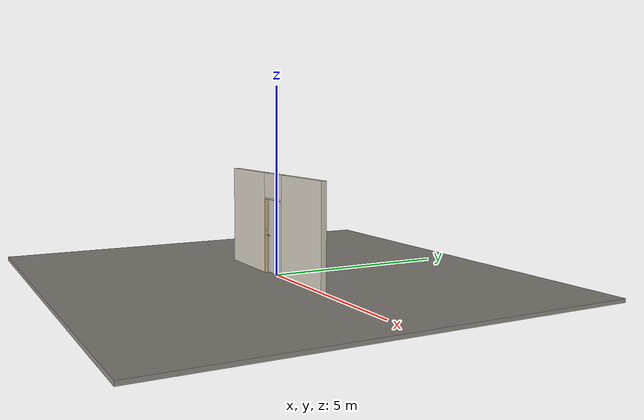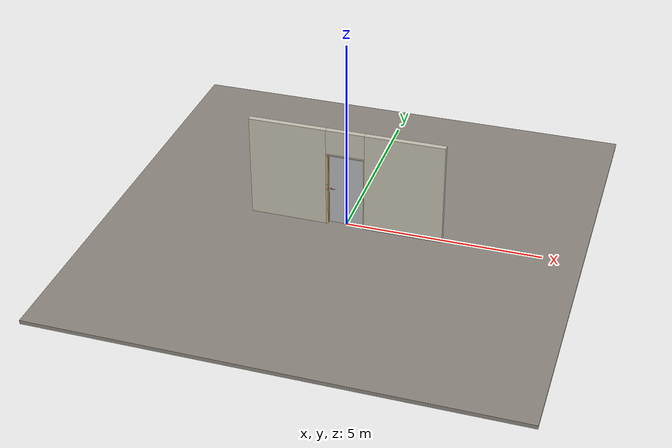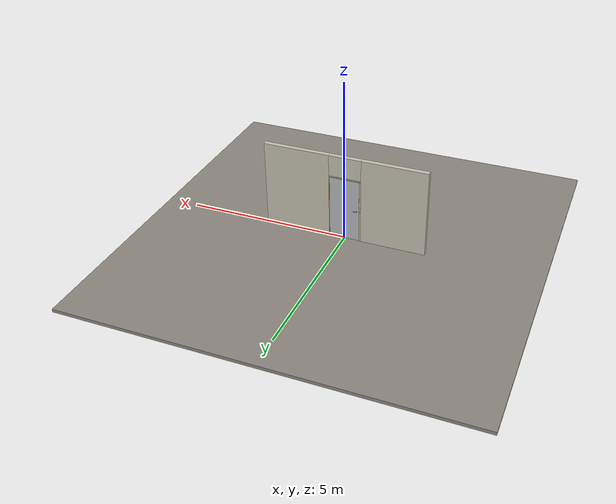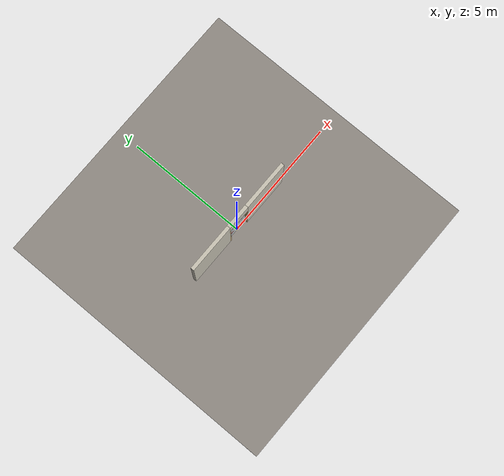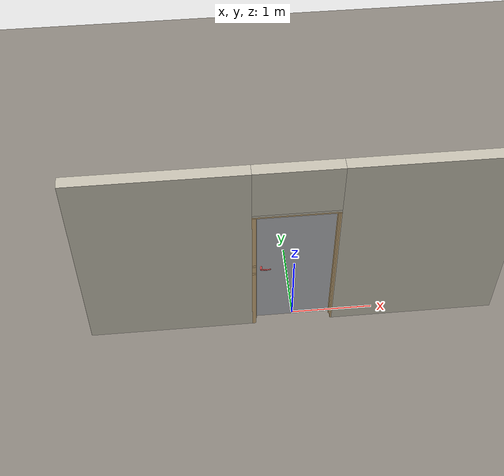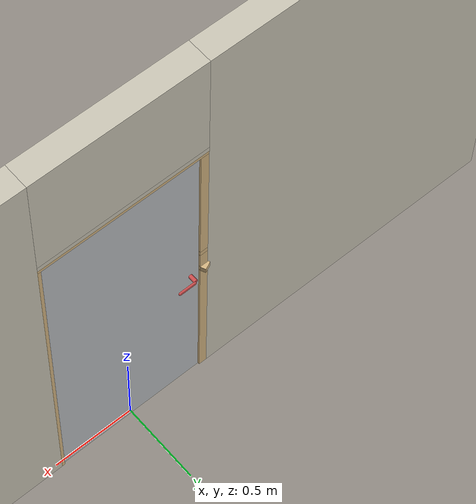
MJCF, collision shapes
<?xml version="1.0" ?>
<mujoco model="db0949_swing_single_minimal">
  <compiler angle="radian" meshdir="../../hardware" texturedir="../../textures" autolimits="true" inertiafromgeom="false"/>
  <option timestep="0.002" integrator="implicitfast" cone="elliptic" impratio="10" noslip_iterations="3">
    <flag multiccd="enable"/>
  </option>
  <size memory="16M"/>
  <default>
    <geom condim="4" solref="0.005 1" solimp="0.95 0.99 0.001"/>
    <joint solreflimit="0.005 1" solimplimit="0.95 0.99 0.001"/>
    <tendon solreflimit="0.005 1"/>
    <equality solref="0.002 1"/>
  </default>
  <visual>
    <headlight ambient="0.4 0.4 0.4" diffuse="0.7 0.7 0.7" specular="0.2 0.2 0.2"/>
    <quality shadowsize="4096"/>
    <map znear="0.01" zfar="60"/>
  </visual>
  <asset>
    <mesh name="lever_748f08efca" file="lever_748f08efca.obj"/>
    <material name="mat_floor" rgba="0.55 0.53 0.5 1" specular="0.2" shininess="0.15" reflectance="0"/>
    <material name="mat_wall" rgba="0.78 0.76 0.7 1" specular="0.2" shininess="0.1" reflectance="0"/>
    <material name="mat_leaf" rgba="0.72 0.73 0.74 1" specular="0.2" shininess="0.49" reflectance="0"/>
    <material name="mat_leaf_panel" rgba="0.662 0.672 0.681 1" specular="0.2" shininess="0.49" reflectance="0"/>
    <material name="mat_hinge" rgba="0.65 0.66 0.68 1" specular="0.74" shininess="0.5" reflectance="0.36"/>
    <material name="mat_op_chrome" rgba="0.9 0.9 0.92 1" specular="0.8" shininess="0.9" reflectance="0.4"/>
    <material name="mat_trim" rgba="0.85 0.66 0.3 1" specular="0.8" shininess="0.75" reflectance="0.4"/>
    <material name="mat_bolt" rgba="0.85 0.66 0.3 1" specular="0.8" shininess="0.75" reflectance="0.4"/>
    <material name="mat_deadbolt" rgba="0.85 0.66 0.3 1" specular="0.8" shininess="0.75" reflectance="0.4"/>
    <material name="mat_frame" rgba="0.82 0.7 0.5 1" specular="0.2" shininess="0.45" reflectance="0"/>
    <material name="mat_bumper_stop" rgba="0.08 0.08 0.08 1" specular="0.2" shininess="0.1" reflectance="0"/>
    <material name="mat_stop_base" rgba="0.9 0.9 0.92 1" specular="0.8" shininess="0.9" reflectance="0.4"/>
    <texture name="skybox" type="skybox" builtin="gradient" rgb1="0.6 0.7 0.85" rgb2="0.9 0.92 0.95" width="256" height="256"/>
  </asset>
  <worldbody>
    <light name="sun" pos="1.5 -2.5 4" dir="-0.3 0.5 -0.8" directional="true" diffuse="0.8 0.8 0.8" specular="0.3 0.3 0.3" castshadow="true"/>
    <light name="fill" pos="-1.5 2.5 3" dir="0.3 -0.5 -0.7" directional="true" diffuse="0.35 0.35 0.4" castshadow="false"/>
    <camera name="robot_view" pos="0 -2.546125 1.698475" xyaxes="1 0 0 0 0.26963 0.962964" fovy="52"/>
    <camera name="far_view" pos="0 2.450125 1.698475" xyaxes="-1 0 0 0 -0.26963 0.962964" fovy="52"/>
    <camera name="iso" pos="-1.898575 -2.146425 2.098175" xyaxes="0.741536 -0.670913 0 0.242917 0.268487 0.932151" fovy="46"/>
    <camera name="detail_handle" pos="-0.1269 -0.8725 1.296" xyaxes="0.97561 0.219512 0 -0.070934 0.315262 0.94635" fovy="38"/>
    <geom name="floor" type="box" size="6 6 0.05" pos="0 0 -0.05" material="mat_floor" group="0" contype="1" conaffinity="1" friction="0.8 0.005 0.0001" density="2400"/>
    <geom name="wall_left" type="box" size="0.99525 0.0725 1.35" pos="-1.50475 -0.048 1.35" material="mat_wall" group="0" contype="1" conaffinity="1" friction="0.6 0.005 0.0001" density="800"/>
    <geom name="wall_right" type="box" size="1.01025 0.0725 1.35" pos="1.48975 -0.048 1.35" material="mat_wall" group="0" contype="1" conaffinity="1" friction="0.6 0.005 0.0001" density="800"/>
    <geom name="wall_header" type="box" size="0.4945 0.0725 0.3265" pos="-0.015 -0.048 2.3735" material="mat_wall" group="0" contype="1" conaffinity="1" friction="0.6 0.005 0.0001" density="800"/>
    <geom name="jamb_hinge" type="box" size="0.0095 0.0725 0.999" pos="0.47 -0.048 0.999" material="mat_frame" group="0" contype="1" conaffinity="1" friction="0.6 0.005 0.0001" density="400"/>
    <geom name="strike_1016_wall_n" type="box" size="0.0245 0.056325 0.0167" pos="-0.485 -0.064175 1.016" material="mat_frame" group="0" contype="1" conaffinity="1" friction="0.6 0.005 0.0001" density="400"/>
    <geom name="strike_1016_wall_p" type="box" size="0.0245 0.008 0.0167" pos="-0.485 0.01585 1.016" material="mat_frame" group="0" contype="1" conaffinity="1" friction="0.6 0.005 0.0001" density="400"/>
    <geom name="strike_1016_ramp" type="box" size="0.0245 0.01649 0.0167" pos="-0.489636 0.028673 1.016" quat="0.977148 0 0 0.212558" material="mat_frame" group="0" contype="1" conaffinity="1" friction="0.12 0.005 0.0001" density="400"/>
    <geom name="strike_1016_back" type="box" size="0.01615 0.00785 0.0167" pos="-0.49335 0 1.016" material="mat_frame" group="0" contype="1" conaffinity="1" friction="0.6 0.005 0.0001" density="400"/>
    <geom name="strike_1156_wall_n" type="box" size="0.0245 0.0555 0.0155" pos="-0.485 -0.065 1.156" material="mat_frame" group="0" contype="1" conaffinity="1" friction="0.6 0.005 0.0001" density="400"/>
    <geom name="strike_1156_wall_p" type="box" size="0.0245 0.0075 0.0155" pos="-0.485 0.017 1.156" material="mat_frame" group="0" contype="1" conaffinity="1" friction="0.6 0.005 0.0001" density="400"/>
    <geom name="strike_1156_back" type="box" size="0.0098 0.0095 0.0155" pos="-0.4997 0 1.156" material="mat_frame" group="0" contype="1" conaffinity="1" friction="0.6 0.005 0.0001" density="400"/>
    <geom name="jamb_strike_0" type="box" size="0.0245 0.0725 0.49965" pos="-0.485 -0.048 0.49965" material="mat_frame" group="0" contype="1" conaffinity="1" friction="0.6 0.005 0.0001" density="400"/>
    <geom name="jamb_strike_1" type="box" size="0.0245 0.0725 0.0539" pos="-0.485 -0.048 1.0866" material="mat_frame" group="0" contype="1" conaffinity="1" friction="0.6 0.005 0.0001" density="400"/>
    <geom name="jamb_strike_2" type="box" size="0.0245 0.0725 0.41325" pos="-0.485 -0.048 1.58475" material="mat_frame" group="0" contype="1" conaffinity="1" friction="0.6 0.005 0.0001" density="400"/>
    <geom name="jamb_head" type="box" size="0.4945 0.0725 0.0095" pos="-0.015 -0.048 2.0075" material="mat_frame" group="0" contype="1" conaffinity="1" friction="0.6 0.005 0.0001" density="400"/>
    <geom name="head_stud" type="box" size="0.4945 0.0725 0.015" pos="-0.015 -0.048 2.032" material="mat_wall" group="0" contype="1" conaffinity="1" friction="0.6 0.005 0.0001" density="500"/>
    <geom name="stop_hinge" type="box" size="0.0055 0.016 0.999" pos="0.455 -0.034 0.999" material="mat_frame" group="0" contype="1" conaffinity="1" friction="0.6 0.005 0.0001" density="400"/>
    <geom name="stop_strike" type="box" size="0.0055 0.016 0.999" pos="-0.455 -0.034 0.999" material="mat_frame" group="0" contype="1" conaffinity="1" friction="0.6 0.005 0.0001" density="400"/>
    <geom name="stop_head" type="box" size="0.4605 0.016 0.0055" pos="0 -0.034 1.9925" material="mat_frame" group="0" contype="1" conaffinity="1" friction="0.6 0.005 0.0001" density="400"/>
    <site name="approach_point" pos="0 -1.5 0" quat="1 0 0 0" size="0.05" rgba="0.2 0.9 0.2 0.5" group="4"/>
    <site name="goal_point" pos="0 1.5 0" quat="1 0 0 0" size="0.05" rgba="0.2 0.9 0.2 0.5" group="4"/>
    <site name="door_plane_center" pos="0 0 0.999" quat="1 0 0 0" size="0.02" rgba="0.2 0.9 0.2 0.5" group="4"/>
    <body name="leaf" pos="0.4605 0 0">
      <inertial pos="-0.46 0 1.0015" mass="13.607802" quat="-0.5 0.5 0.5 0.5" diaginertia="0.948714435 4.469539384 5.415475559"/>
      <joint name="leaf_hinge" type="hinge" axis="0 0 -1" pos="-0.003 0.0245 0" limited="true" range="0 1.570796" damping="0.300186" frictionloss="1.262881" armature="0.02"/>
      <geom name="leaf_slab" type="box" size="0.457 0.0175 0.9925" pos="-0.46 0 1.0015" material="mat_leaf" group="0" contype="1" conaffinity="1" friction="0.35 0.005 0.0001" density="1"/>
      <site name="leaf_edge_mid" pos="-0.917 0 0.9925" quat="1 0 0 0" size="0.02" rgba="0.2 0.9 0.2 0.5" group="4"/>
      <body name="leaf_handle" pos="-0.857 0 1.016">
        <inertial pos="0.025809 0 0" mass="0.794529" quat="0.707107 0 0 -0.707107" diaginertia="0.001153119 0.002805212 0.00382246"/>
        <joint name="leaf_handle_hinge" type="hinge" axis="0 1 0" limited="true" range="0 0.87" damping="0.205084" frictionloss="0.04" stiffness="0.9" springref="-0.444444" armature="0.01"/>
        <geom name="leaf_handle_lever_n" type="mesh" mesh="lever_748f08efca" pos="0 -0.0175 0" quat="0 0 -0.707107 0.707107" material="mat_op_chrome" group="1" contype="0" conaffinity="0" density="3000"/>
        <geom name="leaf_handle_lever_col_n" type="capsule" size="0.008 0.048" pos="0.056 -0.0725 0" quat="0.707107 0 0.707107 0" material="mat_op_chrome" group="3" contype="1" conaffinity="1" rgba="0.8 0.3 0.3 0.25" friction="0.7 0.01 0.0001" density="3000"/>
        <geom name="leaf_handle_hub_col_n" type="cylinder" size="0.012 0.022" pos="0 -0.0475 0" quat="0.707107 -0.707107 0 0" material="mat_op_chrome" group="3" contype="1" conaffinity="1" rgba="0.8 0.3 0.3 0.25" friction="0.6 0.005 0.0001" density="3000"/>
        <geom name="leaf_handle_lever_p" type="mesh" mesh="lever_748f08efca" pos="0 0.0175 0" quat="0 0 0.707107 0.707107" material="mat_op_chrome" group="1" contype="0" conaffinity="0" density="3000"/>
        <geom name="leaf_handle_lever_col_p" type="capsule" size="0.008 0.048" pos="0.056 0.0725 0" quat="0.707107 0 0.707107 0" material="mat_op_chrome" group="3" contype="1" conaffinity="1" rgba="0.8 0.3 0.3 0.25" friction="0.7 0.01 0.0001" density="3000"/>
        <geom name="leaf_handle_hub_col_p" type="cylinder" size="0.012 0.022" pos="0 0.0475 0" quat="0.707107 -0.707107 0 0" material="mat_op_chrome" group="3" contype="1" conaffinity="1" rgba="0.8 0.3 0.3 0.25" friction="0.6 0.005 0.0001" density="3000"/>
        <site name="leaf_handle_grip_n" pos="0.0896 -0.0725 0" quat="1 0 0 0" size="0.012" rgba="0.2 0.9 0.2 0.5" group="4"/>
        <site name="leaf_handle_grip_p" pos="0.0896 0.0725 0" quat="1 0 0 0" size="0.012" rgba="0.2 0.9 0.2 0.5" group="4"/>
      </body>
      <body name="leaf_latch_bolt" pos="-0.917 0 1.016">
        <inertial pos="0.00865 0 0" mass="0.041419" quat="0.92388 0.382683 0 0" diaginertia="0.000000798 0.000005598 0.000005598"/>
        <joint name="leaf_latch_bolt_slide" type="slide" axis="1 0 0" limited="true" range="0 0.0127" damping="2" frictionloss="0.3" stiffness="300" springref="-0.008333" armature="0.1"/>
        <geom name="leaf_latch_bolt_capsule" type="capsule" size="0.00635 0.015" pos="0.00865 0 0" quat="0.707107 0 -0.707107 0" material="mat_bolt" group="0" contype="1" conaffinity="1" friction="0.2 0.005 0.0001" density="8500"/>
      </body>
    </body>
  </worldbody>
  <tendon>
    <fixed name="leaf_latch_bolt_coupling" limited="true" range="0 10">
      <joint joint="leaf_latch_bolt_slide" coef="1"/>
      <joint joint="leaf_handle_hinge" coef="-0.016076"/>
    </fixed>
  </tendon>
  <sensor>
    <jointpos name="leaf_hinge_pos" joint="leaf_hinge"/>
    <jointvel name="leaf_hinge_vel" joint="leaf_hinge"/>
    <jointpos name="leaf_handle_hinge_pos" joint="leaf_handle_hinge"/>
    <jointvel name="leaf_handle_hinge_vel" joint="leaf_handle_hinge"/>
    <jointpos name="leaf_latch_bolt_slide_pos" joint="leaf_latch_bolt_slide"/>
    <jointvel name="leaf_latch_bolt_slide_vel" joint="leaf_latch_bolt_slide"/>
  </sensor>
</mujoco>
